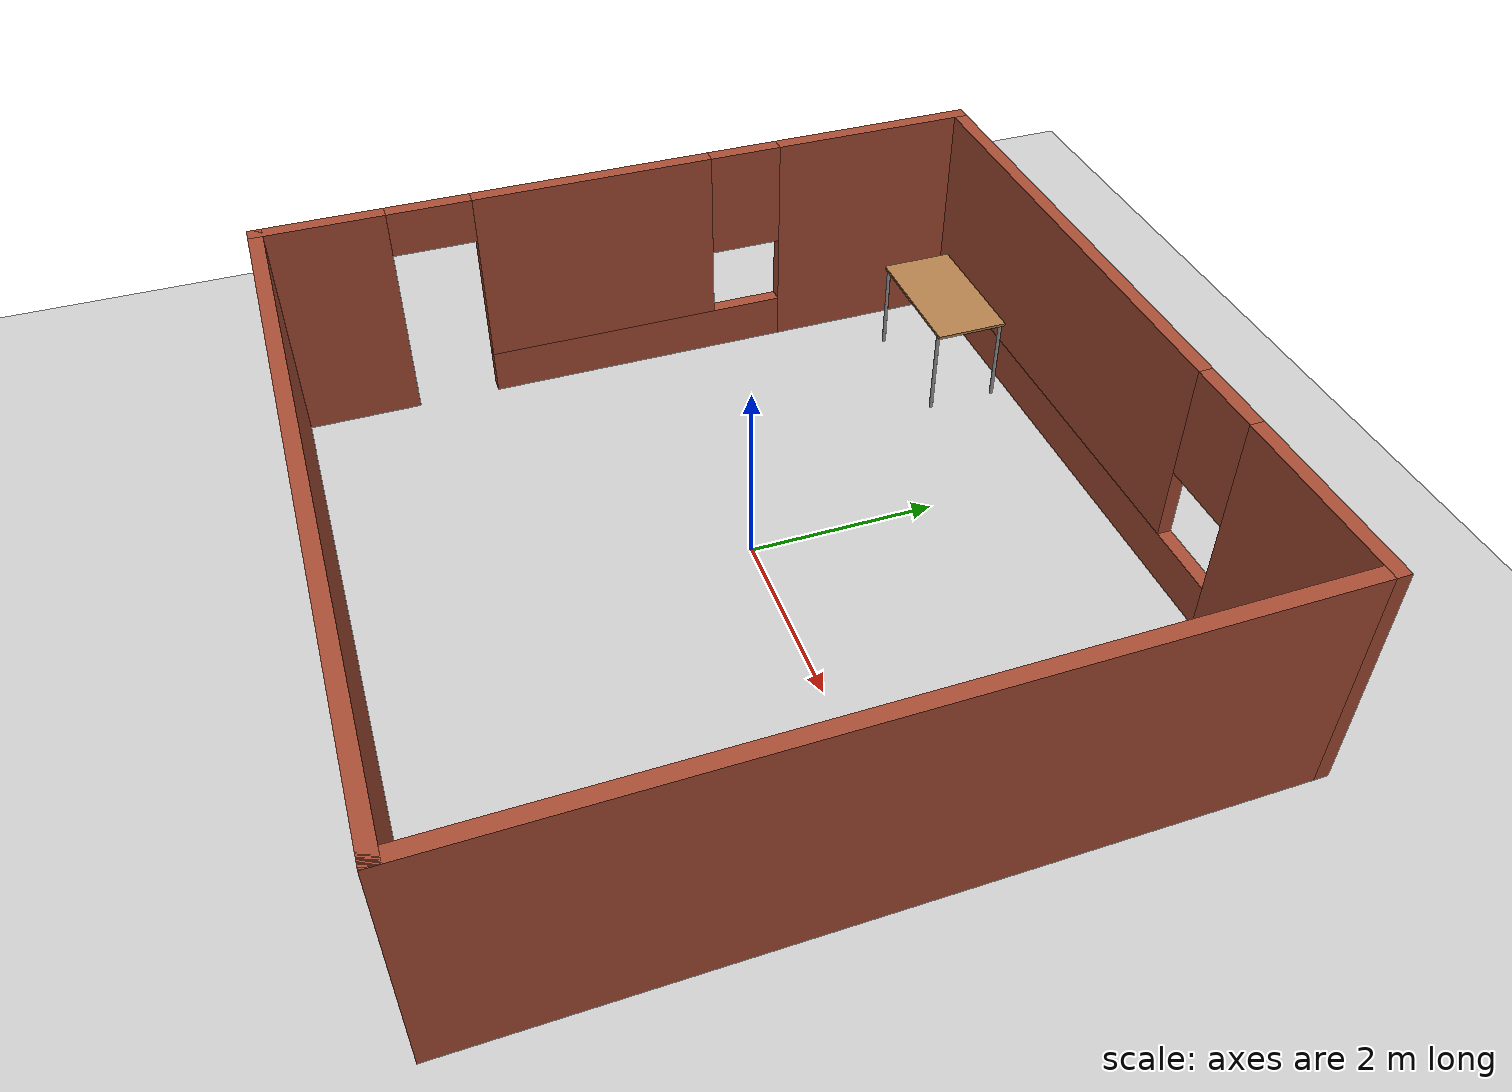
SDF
<sdf version="1.7">
 <world name="default">
  <light name="sun" type="directional">
   <pose>0 0 10 0 -0 0</pose>
   <diffuse>0.8 0.8 0.8 1</diffuse>
   <specular>0.2 0.2 0.2 1</specular>
   <attenuation>
    <range>1000</range>
    <constant>0.9</constant>
    <linear>0.01</linear>
    <quadratic>0.001</quadratic>
   </attenuation>
   <direction>-0.5 0.1 -0.9</direction>
   <spot><inner_angle>0</inner_angle><outer_angle>0</outer_angle><falloff>0</falloff></spot>
  </light>
  <model name="ground_plane">
   <static>1</static>
   <link name="link">
    <collision name="collision">
     <geometry><plane><normal>0 0 1</normal><size>100 100</size></plane></geometry>
     <surface>
      <contact><collide_bitmask>65535</collide_bitmask></contact>
      <friction><ode><mu>100</mu><mu2>50</mu2></ode></friction>
     </surface>
    </collision>
    <visual name="visual">
     <cast_shadows>0</cast_shadows>
     <geometry><plane><normal>0 0 1</normal><size>100 100</size></plane></geometry>
     <material>
      <script><uri>file://media/materials/scripts/gazebo.material</uri><name>Gazebo/Grey</name></script>
     </material>
    </visual>
   </link>
  </model>
  <gravity>0 0 -9.8</gravity>
  <magnetic_field>6e-06 2.3e-05 -4.2e-05</magnetic_field>
  <atmosphere type="adiabatic"/>
  <physics type="ode">
   <max_step_size>0.001</max_step_size>
   <real_time_factor>1</real_time_factor>
   <real_time_update_rate>1000</real_time_update_rate>
  </physics>
  <scene><ambient>0.4 0.4 0.4 1</ambient><background>0.7 0.7 0.7 1</background><shadows>1</shadows></scene>
  <spherical_coordinates>
   <surface_model>EARTH_WGS84</surface_model>
   <latitude_deg>0</latitude_deg>
   <longitude_deg>0</longitude_deg>
   <elevation>0</elevation>
   <heading_deg>0</heading_deg>
  </spherical_coordinates>
  <model name="room">
   <pose>0.350947 0.3601 0 0 -0 0</pose>
   <link name="Wall_0">
    <pose>-3.925 -0.5275 0 0 -0 -1.5708</pose>
    <visual name="Wall_0_Visual_0">
     <pose>-2.86378 0 1.25 0 -0 0</pose>
     <geometry><box><size>2.27245 0.15 2.5</size></box></geometry>
     <material>
      <script><uri>file://media/materials/scripts/gazebo.material</uri><name>Gazebo/Bricks</name></script>
      <ambient>1 1 1 1</ambient>
     </material>
     <meta><layer>0</layer></meta>
    </visual>
    <collision name="Wall_0_Collision_0">
     <geometry><box><size>2.27245 0.15 2.5</size></box></geometry>
     <pose>-2.86378 0 1.25 0 -0 0</pose>
    </collision>
    <visual name="Wall_0_Visual_1">
     <pose>3.30758 0 1.25 0 -0 0</pose>
     <geometry><box><size>1.38483 0.15 2.5</size></box></geometry>
     <material>
      <script><uri>file://media/materials/scripts/gazebo.material</uri><name>Gazebo/Bricks</name></script>
      <ambient>1 1 1 1</ambient>
     </material>
     <meta><layer>0</layer></meta>
    </visual>
    <collision name="Wall_0_Collision_1">
     <geometry><box><size>1.38483 0.15 2.5</size></box></geometry>
     <pose>3.30758 0 1.25 0 -0 0</pose>
    </collision>
    <visual name="Wall_0_Visual_2">
     <pose>-0.006191 0 0.25 0 -0 0</pose>
     <geometry><box><size>3.44272 0.15 0.5</size></box></geometry>
     <material>
      <script><uri>file://media/materials/scripts/gazebo.material</uri><name>Gazebo/Bricks</name></script>
      <ambient>1 1 1 1</ambient>
     </material>
     <meta><layer>0</layer></meta>
    </visual>
    <collision name="Wall_0_Collision_2">
     <geometry><box><size>3.44272 0.15 0.5</size></box></geometry>
     <pose>-0.006191 0 0.25 0 -0 0</pose>
    </collision>
    <visual name="Wall_0_Visual_3">
     <pose>0.393809 0 1.5 0 -0 0</pose>
     <geometry><box><size>2.64272 0.15 2</size></box></geometry>
     <material>
      <script><uri>file://media/materials/scripts/gazebo.material</uri><name>Gazebo/Bricks</name></script>
      <ambient>1 1 1 1</ambient>
     </material>
     <meta><layer>0</layer></meta>
    </visual>
    <collision name="Wall_0_Collision_3">
     <geometry><box><size>2.64272 0.15 2</size></box></geometry>
     <pose>0.393809 0 1.5 0 -0 0</pose>
    </collision>
    <visual name="Wall_0_Visual_4">
     <pose>-1.32755 0 1.9 0 -0 0</pose>
     <geometry><box><size>0.8 0.15 1.2</size></box></geometry>
     <material>
      <script><uri>file://media/materials/scripts/gazebo.material</uri><name>Gazebo/Bricks</name></script>
      <ambient>1 1 1 1</ambient>
     </material>
     <meta><layer>0</layer></meta>
    </visual>
    <collision name="Wall_0_Collision_4">
     <geometry><box><size>0.8 0.15 1.2</size></box></geometry>
     <pose>-1.32755 0 1.9 0 -0 0</pose>
    </collision>
    <visual name="Wall_0_Visual_5">
     <pose>2.16517 0 2.25 0 -0 0</pose>
     <geometry><box><size>0.9 0.15 0.5</size></box></geometry>
     <material>
      <script><uri>file://media/materials/scripts/gazebo.material</uri><name>Gazebo/Bricks</name></script>
      <ambient>1 1 1 1</ambient>
     </material>
     <meta><layer>0</layer></meta>
    </visual>
    <collision name="Wall_0_Collision_5">
     <geometry><box><size>0.9 0.15 0.5</size></box></geometry>
     <pose>2.16517 0 2.25 0 -0 0</pose>
    </collision>
   </link>
   <link name="Wall_1">
    <collision name="Wall_1_Collision">
     <geometry><box><size>8 0.15 2.5</size></box></geometry>
     <pose>0 0 1.25 0 -0 0</pose>
    </collision>
    <visual name="Wall_1_Visual">
     <pose>0 0 1.25 0 -0 0</pose>
     <geometry><box><size>8 0.15 2.5</size></box></geometry>
     <material>
      <script><uri>file://media/materials/scripts/gazebo.material</uri><name>Gazebo/Bricks</name></script>
      <ambient>1 1 1 1</ambient>
     </material>
     <meta><layer>0</layer></meta>
    </visual>
    <pose>0 -4.4525 0 0 -0 0</pose>
   </link>
   <link name="Wall_2">
    <collision name="Wall_2_Collision">
     <geometry><box><size>8 0.15 2.5</size></box></geometry>
     <pose>0 0 1.25 0 -0 0</pose>
    </collision>
    <visual name="Wall_2_Visual">
     <pose>0 0 1.25 0 -0 0</pose>
     <geometry><box><size>8 0.15 2.5</size></box></geometry>
     <material>
      <script><uri>file://media/materials/scripts/gazebo.material</uri><name>Gazebo/Bricks</name></script>
      <ambient>1 1 1 1</ambient>
     </material>
     <meta><layer>0</layer></meta>
    </visual>
    <pose>3.925 -0.5275 0 0 -0 1.5708</pose>
   </link>
   <link name="Wall_3">
    <pose>0 3.3975 0 0 -0 3.14159</pose>
    <visual name="Wall_3_Visual_0">
     <pose>-3.01824 0 1.25 0 -0 0</pose>
     <geometry><box><size>1.96352 0.15 2.5</size></box></geometry>
     <material>
      <script><uri>file://media/materials/scripts/gazebo.material</uri><name>Gazebo/Bricks</name></script>
      <ambient>1 1 1 1</ambient>
     </material>
     <meta><layer>0</layer></meta>
    </visual>
    <collision name="Wall_3_Collision_0">
     <geometry><box><size>1.96352 0.15 2.5</size></box></geometry>
     <pose>-3.01824 0 1.25 0 -0 0</pose>
    </collision>
    <visual name="Wall_3_Visual_1">
     <pose>0.981762 0 0.25 0 -0 0</pose>
     <geometry><box><size>6.03648 0.15 0.5</size></box></geometry>
     <material>
      <script><uri>file://media/materials/scripts/gazebo.material</uri><name>Gazebo/Bricks</name></script>
      <ambient>1 1 1 1</ambient>
     </material>
     <meta><layer>0</layer></meta>
    </visual>
    <collision name="Wall_3_Collision_1">
     <geometry><box><size>6.03648 0.15 0.5</size></box></geometry>
     <pose>0.981762 0 0.25 0 -0 0</pose>
    </collision>
    <visual name="Wall_3_Visual_2">
     <pose>1.38176 0 1.5 0 -0 0</pose>
     <geometry><box><size>5.23648 0.15 2</size></box></geometry>
     <material>
      <script><uri>file://media/materials/scripts/gazebo.material</uri><name>Gazebo/Bricks</name></script>
      <ambient>1 1 1 1</ambient>
     </material>
     <meta><layer>0</layer></meta>
    </visual>
    <collision name="Wall_3_Collision_2">
     <geometry><box><size>5.23648 0.15 2</size></box></geometry>
     <pose>1.38176 0 1.5 0 -0 0</pose>
    </collision>
    <visual name="Wall_3_Visual_3">
     <pose>-1.63647 0 1.9 0 -0 0</pose>
     <geometry><box><size>0.8 0.15 1.2</size></box></geometry>
     <material>
      <script><uri>file://media/materials/scripts/gazebo.material</uri><name>Gazebo/Bricks</name></script>
      <ambient>1 1 1 1</ambient>
     </material>
     <meta><layer>0</layer></meta>
    </visual>
    <collision name="Wall_3_Collision_3">
     <geometry><box><size>0.8 0.15 1.2</size></box></geometry>
     <pose>-1.63647 0 1.9 0 -0 0</pose>
    </collision>
   </link>
   <static>1</static>
  </model>
  <model name="table">
   <static>1</static>
   <link name="link">
    <collision name="surface">
     <pose>0 0 1 0 -0 0</pose>
     <geometry><box><size>1.5 0.8 0.03</size></box></geometry>
     <surface><friction><ode><mu>0.6</mu><mu2>0.6</mu2></ode></friction></surface>
    </collision>
    <visual name="visual1">
     <pose>0 0 1 0 -0 0</pose>
     <geometry><box><size>1.5 0.8 0.03</size></box></geometry>
     <material>
      <script><uri>file://media/materials/scripts/gazebo.material</uri><name>Gazebo/Wood</name></script>
     </material>
    </visual>
    <collision name="front_left_leg">
     <pose>0.68 0.38 0.5 0 -0 0</pose>
     <geometry><cylinder><radius>0.02</radius><length>1</length></cylinder></geometry>
    </collision>
    <visual name="front_left_leg">
     <pose>0.68 0.38 0.5 0 -0 0</pose>
     <geometry><cylinder><radius>0.02</radius><length>1</length></cylinder></geometry>
     <material>
      <script><uri>file://media/materials/scripts/gazebo.material</uri><name>Gazebo/Grey</name></script>
     </material>
    </visual>
    <collision name="front_right_leg">
     <pose>0.68 -0.38 0.5 0 -0 0</pose>
     <geometry><cylinder><radius>0.02</radius><length>1</length></cylinder></geometry>
    </collision>
    <visual name="front_right_leg">
     <pose>0.68 -0.38 0.5 0 -0 0</pose>
     <geometry><cylinder><radius>0.02</radius><length>1</length></cylinder></geometry>
     <material>
      <script><uri>file://media/materials/scripts/gazebo.material</uri><name>Gazebo/Grey</name></script>
     </material>
    </visual>
    <collision name="back_right_leg">
     <pose>-0.68 -0.38 0.5 0 -0 0</pose>
     <geometry><cylinder><radius>0.02</radius><length>1</length></cylinder></geometry>
    </collision>
    <visual name="back_right_leg">
     <pose>-0.68 -0.38 0.5 0 -0 0</pose>
     <geometry><cylinder><radius>0.02</radius><length>1</length></cylinder></geometry>
     <material>
      <script><uri>file://media/materials/scripts/gazebo.material</uri><name>Gazebo/Grey</name></script>
     </material>
    </visual>
    <collision name="back_left_leg">
     <pose>-0.68 0.38 0.5 0 -0 0</pose>
     <geometry><cylinder><radius>0.02</radius><length>1</length></cylinder></geometry>
    </collision>
    <visual name="back_left_leg">
     <pose>-0.68 0.38 0.5 0 -0 0</pose>
     <geometry><cylinder><radius>0.02</radius><length>1</length></cylinder></geometry>
     <material>
      <script><uri>file://media/materials/scripts/gazebo.material</uri><name>Gazebo/Grey</name></script>
     </material>
    </visual>
   </link>
   <pose>3.67423 -3.13987 0 0 0 -1.60185</pose>
  </model>
  <model name="table_0">
   <static>1</static>
   <link name="link">
    <collision name="surface">
     <pose>0 0 1 0 -0 0</pose>
     <geometry><box><size>1.5 0.8 0.03</size></box></geometry>
     <surface><friction><ode><mu>0.6</mu><mu2>0.6</mu2></ode></friction></surface>
    </collision>
    <visual name="visual1">
     <pose>0 0 1 0 -0 0</pose>
     <geometry><box><size>1.5 0.8 0.03</size></box></geometry>
     <material>
      <script><uri>file://media/materials/scripts/gazebo.material</uri><name>Gazebo/Wood</name></script>
     </material>
    </visual>
    <collision name="front_left_leg">
     <pose>0.68 0.38 0.5 0 -0 0</pose>
     <geometry><cylinder><radius>0.02</radius><length>1</length></cylinder></geometry>
    </collision>
    <visual name="front_left_leg">
     <pose>0.68 0.38 0.5 0 -0 0</pose>
     <geometry><cylinder><radius>0.02</radius><length>1</length></cylinder></geometry>
     <material>
      <script><uri>file://media/materials/scripts/gazebo.material</uri><name>Gazebo/Grey</name></script>
     </material>
    </visual>
    <collision name="front_right_leg">
     <pose>0.68 -0.38 0.5 0 -0 0</pose>
     <geometry><cylinder><radius>0.02</radius><length>1</length></cylinder></geometry>
    </collision>
    <visual name="front_right_leg">
     <pose>0.68 -0.38 0.5 0 -0 0</pose>
     <geometry><cylinder><radius>0.02</radius><length>1</length></cylinder></geometry>
     <material>
      <script><uri>file://media/materials/scripts/gazebo.material</uri><name>Gazebo/Grey</name></script>
     </material>
    </visual>
    <collision name="back_right_leg">
     <pose>-0.68 -0.38 0.5 0 -0 0</pose>
     <geometry><cylinder><radius>0.02</radius><length>1</length></cylinder></geometry>
    </collision>
    <visual name="back_right_leg">
     <pose>-0.68 -0.38 0.5 0 -0 0</pose>
     <geometry><cylinder><radius>0.02</radius><length>1</length></cylinder></geometry>
     <material>
      <script><uri>file://media/materials/scripts/gazebo.material</uri><name>Gazebo/Grey</name></script>
     </material>
    </visual>
    <collision name="back_left_leg">
     <pose>-0.68 0.38 0.5 0 -0 0</pose>
     <geometry><cylinder><radius>0.02</radius><length>1</length></cylinder></geometry>
    </collision>
    <visual name="back_left_leg">
     <pose>-0.68 0.38 0.5 0 -0 0</pose>
     <geometry><cylinder><radius>0.02</radius><length>1</length></cylinder></geometry>
     <material>
      <script><uri>file://media/materials/scripts/gazebo.material</uri><name>Gazebo/Grey</name></script>
     </material>
    </visual>
   </link>
   <pose>-2.2401 3.1027 0 0 -0 0</pose>
  </model>
 </world>
</sdf>
